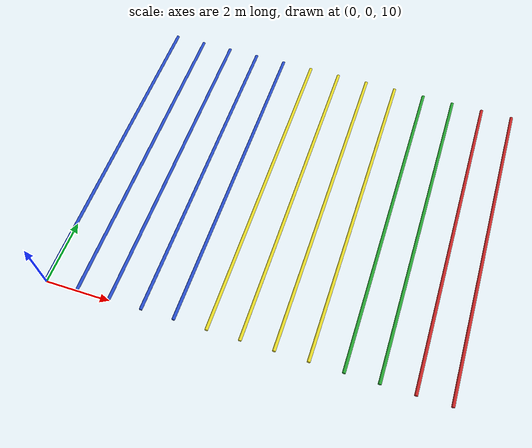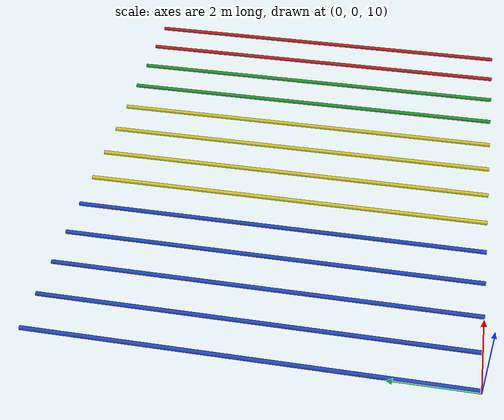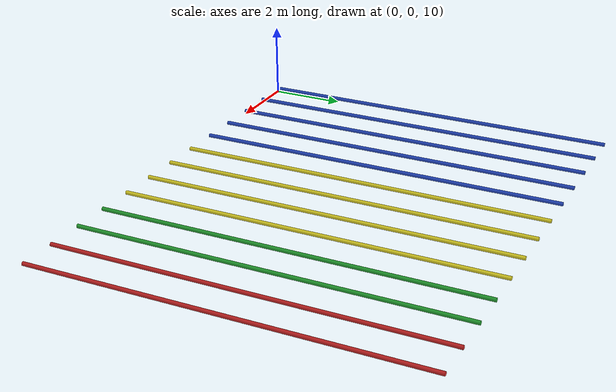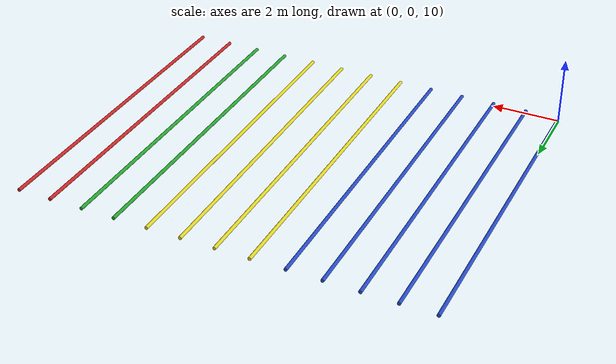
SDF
<?xml version="1.0" ?>
<sdf version="1.5">
  <world name="default">
    <gui>
      <camera name="user_camera">
        <pose>-30 0 10 0 0 0</pose>
      </camera>
    </gui>
    <scene>
      <ambient>0.5 0.5 0.5 1</ambient>
      <background>0.5 0.5 0.5 1</background>
      <shadows>false</shadows>
    </scene>
    <include>
      <uri>model://sun</uri>
    </include>
    <physics type="ode">
      <gravity>0.0 0.0 -9.81</gravity>
      <ode>
        <solver>
          <type>quick</type>
          <iters>100</iters>
          <sor>1.0</sor>
        </solver>
        <constraints>
          <cfm>0</cfm>
          <erp>1.0</erp>
          <contact_max_correcting_vel>0.0</contact_max_correcting_vel>
          <contact_surface_layer>0.0</contact_surface_layer>
        </constraints>
      </ode>
      <max_step_size>0.001</max_step_size>
    </physics>

    <!-- next few models test the effects of different masses -->
    <model name="mass_test_0p01_damping_10">
      <pose>0.0 0.0 10.1 1.57079633 0.0 0.0</pose>
      <link name="link_1">
        <pose>0.0 0.0 0.0 0.0 0.0 0.0</pose>
        <inertial>
          <pose>0.0 0.0 -10.0 0.0 0.0 0.0</pose>
          <inertia>
            <ixx>1e-5</ixx>
            <ixy>0.0</ixy>
            <ixz>0.0</ixz>
            <iyy>1e-5</iyy>
            <iyz>0.0</iyz>
            <izz>1e-5</izz>
          </inertia>
          <mass>0.01</mass>
        </inertial>
        <velocity_decay>
          <linear>0.0</linear>
          <angular>0.0</angular>
        </velocity_decay>
        <visual name="visual_cylinder">
          <pose>0.0 0.0 -5.0 0.0 0.0 0.0</pose>
          <geometry>
            <cylinder>
              <radius>0.05</radius>
              <length>10.0</length>
            </cylinder>
          </geometry>
          <material>
            <script><uri>file://media/materials/scripts/gazebo.material</uri><name>Gazebo/Blue</name></script>
          </material>
        </visual>
        <collision name="collision_cylinder">
          <pose>0.0 0.0 -5.0 0.0 0.0 0.0</pose>
          <max_contacts>250</max_contacts>
          <geometry>
            <cylinder>
              <radius>0.05</radius>
              <length>10.0</length>
            </cylinder>
          </geometry>
        </collision>
        <gravity>true</gravity>
        <self_collide>true</self_collide>
        <kinematic>false</kinematic>
      </link>
      <joint name="joint_0" type="revolute">
        <parent>world</parent>
        <child>link_1</child>
        <pose>0.0 0.0 0.0 0.0 0.0 0.0</pose>
        <axis>
          <xyz>1.0 0.0 0.0</xyz>
          <dynamics>
            <damping>10.0</damping>
            <friction>0.0</friction>
          </dynamics>
          <use_parent_model_frame>true</use_parent_model_frame>
        </axis>
      </joint>
      <static>false</static>
    </model>
    <model name="mass_test_0p1_damping_10">
      <pose>1.0 0.0 10.1 1.57079633 0.0 0.0</pose>
      <link name="link_1">
        <pose>0.0 0.0 0.0 0.0 0.0 0.0</pose>
        <inertial>
          <pose>0.0 0.0 -10.0 0.0 0.0 0.0</pose>
          <inertia>
            <ixx>1e-3</ixx>
            <ixy>0.0</ixy>
            <ixz>0.0</ixz>
            <iyy>1e-3</iyy>
            <iyz>0.0</iyz>
            <izz>1e-3</izz>
          </inertia>
          <mass>0.1</mass>
        </inertial>
        <velocity_decay>
          <linear>0.0</linear>
          <angular>0.0</angular>
        </velocity_decay>
        <visual name="visual_cylinder">
          <pose>0.0 0.0 -5.0 0.0 0.0 0.0</pose>
          <geometry>
            <cylinder>
              <radius>0.05</radius>
              <length>10.0</length>
            </cylinder>
          </geometry>
          <material>
            <script><uri>file://media/materials/scripts/gazebo.material</uri><name>Gazebo/Blue</name></script>
          </material>
        </visual>
        <collision name="collision_cylinder">
          <pose>0.0 0.0 -5.0 0.0 0.0 0.0</pose>
          <max_contacts>250</max_contacts>
          <geometry>
            <cylinder>
              <radius>0.05</radius>
              <length>10.0</length>
            </cylinder>
          </geometry>
        </collision>
        <gravity>true</gravity>
        <self_collide>true</self_collide>
        <kinematic>false</kinematic>
      </link>
      <joint name="joint_0" type="revolute">
        <parent>world</parent>
        <child>link_1</child>
        <pose>0.0 0.0 0.0 0.0 0.0 0.0</pose>
        <axis>
          <xyz>1.0 0.0 0.0</xyz>
          <dynamics>
            <damping>10.0</damping>
            <friction>0.0</friction>
          </dynamics>
          <use_parent_model_frame>true</use_parent_model_frame>
        </axis>
      </joint>
      <static>false</static>
    </model>
    <model name="mass_test_1_damping_10">
      <pose>2.0 0.0 10.1 1.57079633 0.0 0.0</pose>
      <link name="link_1">
        <pose>0.0 0.0 0.0 0.0 0.0 0.0</pose>
        <inertial>
          <pose>0.0 0.0 -10.0 0.0 0.0 0.0</pose>
          <inertia>
            <ixx>1e-3</ixx>
            <ixy>0.0</ixy>
            <ixz>0.0</ixz>
            <iyy>1e-3</iyy>
            <iyz>0.0</iyz>
            <izz>1e-3</izz>
          </inertia>
          <mass>1.0</mass>
        </inertial>
        <velocity_decay>
          <linear>0.0</linear>
          <angular>0.0</angular>
        </velocity_decay>
        <visual name="visual_cylinder">
          <pose>0.0 0.0 -5.0 0.0 0.0 0.0</pose>
          <geometry>
            <cylinder>
              <radius>0.05</radius>
              <length>10.0</length>
            </cylinder>
          </geometry>
          <material>
            <script><uri>file://media/materials/scripts/gazebo.material</uri><name>Gazebo/Blue</name></script>
          </material>
        </visual>
        <collision name="collision_cylinder">
          <pose>0.0 0.0 -5.0 0.0 0.0 0.0</pose>
          <max_contacts>250</max_contacts>
          <geometry>
            <cylinder>
              <radius>0.05</radius>
              <length>10.0</length>
            </cylinder>
          </geometry>
        </collision>
        <gravity>true</gravity>
        <self_collide>true</self_collide>
        <kinematic>false</kinematic>
      </link>
      <joint name="joint_0" type="revolute">
        <parent>world</parent>
        <child>link_1</child>
        <pose>0.0 0.0 0.0 0.0 0.0 0.0</pose>
        <axis>
          <xyz>1.0 0.0 0.0</xyz>
          <dynamics>
            <damping>10.0</damping>
            <friction>0.0</friction>
          </dynamics>
          <use_parent_model_frame>true</use_parent_model_frame>
        </axis>
      </joint>
      <static>false</static>
    </model>
    <model name="mass_test_10_damping_10">
      <pose>3.0 0.0 10.1 1.57079633 0.0 0.0</pose>
      <link name="link_1">
        <pose>0.0 0.0 0.0 0.0 0.0 0.0</pose>
        <inertial>
          <pose>0.0 0.0 -10.0 0.0 0.0 0.0</pose>
          <inertia>
            <ixx>1e-3</ixx>
            <ixy>0.0</ixy>
            <ixz>0.0</ixz>
            <iyy>1e-3</iyy>
            <iyz>0.0</iyz>
            <izz>1e-3</izz>
          </inertia>
          <mass>10.0</mass>
        </inertial>
        <velocity_decay>
          <linear>0.0</linear>
          <angular>0.0</angular>
        </velocity_decay>
        <visual name="visual_cylinder">
          <pose>0.0 0.0 -5.0 0.0 0.0 0.0</pose>
          <geometry>
            <cylinder>
              <radius>0.05</radius>
              <length>10.0</length>
            </cylinder>
          </geometry>
          <material>
            <script><uri>file://media/materials/scripts/gazebo.material</uri><name>Gazebo/Blue</name></script>
          </material>
        </visual>
        <collision name="collision_cylinder">
          <pose>0.0 0.0 -5.0 0.0 0.0 0.0</pose>
          <max_contacts>250</max_contacts>
          <geometry>
            <cylinder>
              <radius>0.05</radius>
              <length>10.0</length>
            </cylinder>
          </geometry>
        </collision>
        <gravity>true</gravity>
        <self_collide>true</self_collide>
        <kinematic>false</kinematic>
      </link>
      <joint name="joint_0" type="revolute">
        <parent>world</parent>
        <child>link_1</child>
        <pose>0.0 0.0 0.0 0.0 0.0 0.0</pose>
        <axis>
          <xyz>1.0 0.0 0.0</xyz>
          <dynamics>
            <damping>10.0</damping>
            <friction>0.0</friction>
          </dynamics>
          <use_parent_model_frame>true</use_parent_model_frame>
        </axis>
      </joint>
      <static>false</static>
    </model>
    <model name="mass_test_100_damping_10">
      <pose>4.0 0.0 10.1 1.57079633 0.0 0.0</pose>
      <link name="link_1">
        <pose>0.0 0.0 0.0 0.0 0.0 0.0</pose>
        <inertial>
          <pose>0.0 0.0 -10.0 0.0 0.0 0.0</pose>
          <inertia>
            <ixx>1e-3</ixx>
            <ixy>0.0</ixy>
            <ixz>0.0</ixz>
            <iyy>1e-3</iyy>
            <iyz>0.0</iyz>
            <izz>1e-3</izz>
          </inertia>
          <mass>100.0</mass>
        </inertial>
        <velocity_decay>
          <linear>0.0</linear>
          <angular>0.0</angular>
        </velocity_decay>
        <visual name="visual_cylinder">
          <pose>0.0 0.0 -5.0 0.0 0.0 0.0</pose>
          <geometry>
            <cylinder>
              <radius>0.05</radius>
              <length>10.0</length>
            </cylinder>
          </geometry>
          <material>
            <script><uri>file://media/materials/scripts/gazebo.material</uri><name>Gazebo/Blue</name></script>
          </material>
        </visual>
        <collision name="collision_cylinder">
          <pose>0.0 0.0 -5.0 0.0 0.0 0.0</pose>
          <max_contacts>250</max_contacts>
          <geometry>
            <cylinder>
              <radius>0.05</radius>
              <length>10.0</length>
            </cylinder>
          </geometry>
        </collision>
        <gravity>true</gravity>
        <self_collide>true</self_collide>
        <kinematic>false</kinematic>
      </link>
      <joint name="joint_0" type="revolute">
        <parent>world</parent>
        <child>link_1</child>
        <pose>0.0 0.0 0.0 0.0 0.0 0.0</pose>
        <axis>
          <xyz>1.0 0.0 0.0</xyz>
          <dynamics>
            <damping>10.0</damping>
            <friction>0.0</friction>
          </dynamics>
          <use_parent_model_frame>true</use_parent_model_frame>
        </axis>
      </joint>
      <static>false</static>
    </model>

    <!-- next few models test different damping coefficients -->
    <model name="damping_test_mass_1_damping_1">
      <pose>5.0 0.0 10.1 1.57079633 0.0 0.0</pose>
      <link name="link_1">
        <pose>0.0 0.0 0.0 0.0 0.0 0.0</pose>
        <inertial>
          <pose>0.0 0.0 -10.0 0.0 0.0 0.0</pose>
          <inertia>
            <ixx>1e-3</ixx>
            <ixy>0.0</ixy>
            <ixz>0.0</ixz>
            <iyy>1e-3</iyy>
            <iyz>0.0</iyz>
            <izz>1e-3</izz>
          </inertia>
          <mass>1.0</mass>
        </inertial>
        <velocity_decay>
          <linear>0.0</linear>
          <angular>0.0</angular>
        </velocity_decay>
        <visual name="visual_cylinder">
          <pose>0.0 0.0 -5.0 0.0 0.0 0.0</pose>
          <geometry>
            <cylinder>
              <radius>0.05</radius>
              <length>10.0</length>
            </cylinder>
          </geometry>
          <material>
            <script><uri>file://media/materials/scripts/gazebo.material</uri><name>Gazebo/Yellow</name></script>
          </material>
        </visual>
        <collision name="collision_cylinder">
          <pose>0.0 0.0 -5.0 0.0 0.0 0.0</pose>
          <max_contacts>250</max_contacts>
          <geometry>
            <cylinder>
              <radius>0.05</radius>
              <length>10.0</length>
            </cylinder>
          </geometry>
        </collision>
        <gravity>true</gravity>
        <self_collide>true</self_collide>
        <kinematic>false</kinematic>
      </link>
      <joint name="joint_0" type="revolute">
        <parent>world</parent>
        <child>link_1</child>
        <pose>0.0 0.0 0.0 0.0 0.0 0.0</pose>
        <axis>
          <xyz>1.0 0.0 0.0</xyz>
          <dynamics>
            <damping>1.0</damping>
            <friction>0.0</friction>
          </dynamics>
          <use_parent_model_frame>true</use_parent_model_frame>
        </axis>
      </joint>
      <static>false</static>
    </model>
    <model name="damping_test_mass_1_damping_10">
      <pose>6.0 0.0 10.1 1.57079633 0.0 0.0</pose>
      <link name="link_1">
        <pose>0.0 0.0 0.0 0.0 0.0 0.0</pose>
        <inertial>
          <pose>0.0 0.0 -10.0 0.0 0.0 0.0</pose>
          <inertia>
            <ixx>1e-3</ixx>
            <ixy>0.0</ixy>
            <ixz>0.0</ixz>
            <iyy>1e-3</iyy>
            <iyz>0.0</iyz>
            <izz>1e-3</izz>
          </inertia>
          <mass>1.0</mass>
        </inertial>
        <velocity_decay>
          <linear>0.0</linear>
          <angular>0.0</angular>
        </velocity_decay>
        <visual name="visual_cylinder">
          <pose>0.0 0.0 -5.0 0.0 0.0 0.0</pose>
          <geometry>
            <cylinder>
              <radius>0.05</radius>
              <length>10.0</length>
            </cylinder>
          </geometry>
          <material>
            <script><uri>file://media/materials/scripts/gazebo.material</uri><name>Gazebo/Yellow</name></script>
          </material>
        </visual>
        <collision name="collision_cylinder">
          <pose>0.0 0.0 -5.0 0.0 0.0 0.0</pose>
          <max_contacts>250</max_contacts>
          <geometry>
            <cylinder>
              <radius>0.05</radius>
              <length>10.0</length>
            </cylinder>
          </geometry>
        </collision>
        <gravity>true</gravity>
        <self_collide>true</self_collide>
        <kinematic>false</kinematic>
      </link>
      <joint name="joint_0" type="revolute">
        <parent>world</parent>
        <child>link_1</child>
        <pose>0.0 0.0 0.0 0.0 0.0 0.0</pose>
        <axis>
          <xyz>1.0 0.0 0.0</xyz>
          <dynamics>
            <damping>10.0</damping>
            <friction>0.0</friction>
          </dynamics>
          <use_parent_model_frame>true</use_parent_model_frame>
        </axis>
      </joint>
      <static>false</static>
    </model>
    <model name="damping_test_mass_1_damping_100">
      <pose>7.0 0.0 10.1 1.57079633 0.0 0.0</pose>
      <link name="link_1">
        <pose>0.0 0.0 0.0 0.0 0.0 0.0</pose>
        <inertial>
          <pose>0.0 0.0 -10.0 0.0 0.0 0.0</pose>
          <inertia>
            <ixx>1e-3</ixx>
            <ixy>0.0</ixy>
            <ixz>0.0</ixz>
            <iyy>1e-3</iyy>
            <iyz>0.0</iyz>
            <izz>1e-3</izz>
          </inertia>
          <mass>1.0</mass>
        </inertial>
        <velocity_decay>
          <linear>0.0</linear>
          <angular>0.0</angular>
        </velocity_decay>
        <visual name="visual_cylinder">
          <pose>0.0 0.0 -5.0 0.0 0.0 0.0</pose>
          <geometry>
            <cylinder>
              <radius>0.05</radius>
              <length>10.0</length>
            </cylinder>
          </geometry>
          <material>
            <script><uri>file://media/materials/scripts/gazebo.material</uri><name>Gazebo/Yellow</name></script>
          </material>
        </visual>
        <collision name="collision_cylinder">
          <pose>0.0 0.0 -5.0 0.0 0.0 0.0</pose>
          <max_contacts>250</max_contacts>
          <geometry>
            <cylinder>
              <radius>0.05</radius>
              <length>10.0</length>
            </cylinder>
          </geometry>
        </collision>
        <gravity>true</gravity>
        <self_collide>true</self_collide>
        <kinematic>false</kinematic>
      </link>
      <joint name="joint_0" type="revolute">
        <parent>world</parent>
        <child>link_1</child>
        <pose>0.0 0.0 0.0 0.0 0.0 0.0</pose>
        <axis>
          <xyz>1.0 0.0 0.0</xyz>
          <dynamics>
            <damping>100.0</damping>
            <friction>0.0</friction>
          </dynamics>
          <use_parent_model_frame>true</use_parent_model_frame>
        </axis>
      </joint>
      <static>false</static>
    </model>
    <model name="damping_test_mass_1_damping_1000">
      <pose>8.0 0.0 10.1 1.57079633 0.0 0.0</pose>
      <link name="link_1">
        <pose>0.0 0.0 0.0 0.0 0.0 0.0</pose>
        <inertial>
          <pose>0.0 0.0 -10.0 0.0 0.0 0.0</pose>
          <inertia>
            <ixx>1e-3</ixx>
            <ixy>0.0</ixy>
            <ixz>0.0</ixz>
            <iyy>1e-3</iyy>
            <iyz>0.0</iyz>
            <izz>1e-3</izz>
          </inertia>
          <mass>1.0</mass>
        </inertial>
        <velocity_decay>
          <linear>0.0</linear>
          <angular>0.0</angular>
        </velocity_decay>
        <visual name="visual_cylinder">
          <pose>0.0 0.0 -5.0 0.0 0.0 0.0</pose>
          <geometry>
            <cylinder>
              <radius>0.05</radius>
              <length>10.0</length>
            </cylinder>
          </geometry>
          <material>
            <script><uri>file://media/materials/scripts/gazebo.material</uri><name>Gazebo/Yellow</name></script>
          </material>
        </visual>
        <collision name="collision_cylinder">
          <pose>0.0 0.0 -5.0 0.0 0.0 0.0</pose>
          <max_contacts>250</max_contacts>
          <geometry>
            <cylinder>
              <radius>0.05</radius>
              <length>10.0</length>
            </cylinder>
          </geometry>
        </collision>
        <gravity>true</gravity>
        <self_collide>true</self_collide>
        <kinematic>false</kinematic>
      </link>
      <joint name="joint_0" type="revolute">
        <parent>world</parent>
        <child>link_1</child>
        <pose>0.0 0.0 0.0 0.0 0.0 0.0</pose>
        <axis>
          <xyz>1.0 0.0 0.0</xyz>
          <dynamics>
            <damping>1000.0</damping>
            <friction>0.0</friction>
          </dynamics>
          <use_parent_model_frame>true</use_parent_model_frame>
        </axis>
      </joint>
      <static>false</static>
    </model>

    <!-- next two models have large MOI, different damping -->
    <model name="moi_test_mass_1_moi_1_damping_1">
      <pose>9.0 0.0 10.1 1.57079633 0.0 0.0</pose>
      <link name="link_1">
        <pose>0.0 0.0 0.0 0.0 0.0 0.0</pose>
        <inertial>
          <pose>0.0 0.0 -10.0 0.0 0.0 0.0</pose>
          <inertia>
            <ixx>1.0</ixx>
            <ixy>0.0</ixy>
            <ixz>0.0</ixz>
            <iyy>1.0</iyy>
            <iyz>0.0</iyz>
            <izz>1.0</izz>
          </inertia>
          <mass>1.0</mass>
        </inertial>
        <velocity_decay>
          <linear>0.0</linear>
          <angular>0.0</angular>
        </velocity_decay>
        <visual name="visual_cylinder">
          <pose>0.0 0.0 -5.0 0.0 0.0 0.0</pose>
          <geometry>
            <cylinder>
              <radius>0.05</radius>
              <length>10.0</length>
            </cylinder>
          </geometry>
          <material>
            <script><uri>file://media/materials/scripts/gazebo.material</uri><name>Gazebo/Green</name></script>
          </material>
        </visual>
        <collision name="collision_cylinder">
          <pose>0.0 0.0 -5.0 0.0 0.0 0.0</pose>
          <max_contacts>250</max_contacts>
          <geometry>
            <cylinder>
              <radius>0.05</radius>
              <length>10.0</length>
            </cylinder>
          </geometry>
        </collision>
        <gravity>true</gravity>
        <self_collide>true</self_collide>
        <kinematic>false</kinematic>
      </link>
      <joint name="joint_0" type="revolute">
        <parent>world</parent>
        <child>link_1</child>
        <pose>0.0 0.0 0.0 0.0 0.0 0.0</pose>
        <axis>
          <xyz>1.0 0.0 0.0</xyz>
          <dynamics>
            <damping>1.0</damping>
            <friction>0.0</friction>
          </dynamics>
          <use_parent_model_frame>true</use_parent_model_frame>
        </axis>
      </joint>
      <static>false</static>
    </model>
    <model name="moi_test_mass_1_moi_1_damping_10">
      <pose>10.0 0.0 10.1 1.57079633 0.0 0.0</pose>
      <link name="link_1">
        <pose>0.0 0.0 0.0 0.0 0.0 0.0</pose>
        <inertial>
          <pose>0.0 0.0 -10.0 0.0 0.0 0.0</pose>
          <inertia>
            <ixx>1.0</ixx>
            <ixy>0.0</ixy>
            <ixz>0.0</ixz>
            <iyy>1.0</iyy>
            <iyz>0.0</iyz>
            <izz>1.0</izz>
          </inertia>
          <mass>1.0</mass>
        </inertial>
        <velocity_decay>
          <linear>0.0</linear>
          <angular>0.0</angular>
        </velocity_decay>
        <visual name="visual_cylinder">
          <pose>0.0 0.0 -5.0 0.0 0.0 0.0</pose>
          <geometry>
            <cylinder>
              <radius>0.05</radius>
              <length>10.0</length>
            </cylinder>
          </geometry>
          <material>
            <script><uri>file://media/materials/scripts/gazebo.material</uri><name>Gazebo/Green</name></script>
          </material>
        </visual>
        <collision name="collision_cylinder">
          <pose>0.0 0.0 -5.0 0.0 0.0 0.0</pose>
          <max_contacts>250</max_contacts>
          <geometry>
            <cylinder>
              <radius>0.05</radius>
              <length>10.0</length>
            </cylinder>
          </geometry>
        </collision>
        <gravity>true</gravity>
        <self_collide>true</self_collide>
        <kinematic>false</kinematic>
      </link>
      <joint name="joint_0" type="revolute">
        <parent>world</parent>
        <child>link_1</child>
        <pose>0.0 0.0 0.0 0.0 0.0 0.0</pose>
        <axis>
          <xyz>1.0 0.0 0.0</xyz>
          <dynamics>
            <damping>10.0</damping>
            <friction>0.0</friction>
          </dynamics>
          <use_parent_model_frame>true</use_parent_model_frame>
        </axis>
      </joint>
      <static>false</static>
    </model>

    <!-- next two models have different point masses, but should oscillate
         synchronously if physics solver is doing the right thing -->
    <model name="freq_test_mass_1_damping_0">
      <pose>11.0 0.0 10.1 1.57079633 0.0 0.0</pose>
      <link name="link_1">
        <pose>0.0 0.0 0.0 0.0 0.0 0.0</pose>
        <inertial>
          <pose>0.0 0.0 -10.0 0.0 0.0 0.0</pose>
          <inertia>
            <ixx>1e-3</ixx>
            <ixy>0.0</ixy>
            <ixz>0.0</ixz>
            <iyy>1e-3</iyy>
            <iyz>0.0</iyz>
            <izz>1e-3</izz>
          </inertia>
          <mass>1.0</mass>
        </inertial>
        <velocity_decay>
          <linear>0.0</linear>
          <angular>0.0</angular>
        </velocity_decay>
        <visual name="visual_cylinder">
          <pose>0.0 0.0 -5.0 0.0 0.0 0.0</pose>
          <geometry>
            <cylinder>
              <radius>0.05</radius>
              <length>10.0</length>
            </cylinder>
          </geometry>
          <material>
            <script><uri>file://media/materials/scripts/gazebo.material</uri><name>Gazebo/Red</name></script>
          </material>
        </visual>
        <collision name="collision_cylinder">
          <pose>0.0 0.0 -5.0 0.0 0.0 0.0</pose>
          <max_contacts>250</max_contacts>
          <geometry>
            <cylinder>
              <radius>0.05</radius>
              <length>10.0</length>
            </cylinder>
          </geometry>
        </collision>
        <gravity>true</gravity>
        <self_collide>true</self_collide>
        <kinematic>false</kinematic>
      </link>
      <joint name="joint_0" type="revolute">
        <parent>world</parent>
        <child>link_1</child>
        <pose>0.0 0.0 0.0 0.0 0.0 0.0</pose>
        <axis>
          <xyz>1.0 0.0 0.0</xyz>
          <dynamics>
            <damping>0.0</damping>
            <friction>0.0</friction>
          </dynamics>
          <use_parent_model_frame>true</use_parent_model_frame>
        </axis>
      </joint>
      <static>false</static>
    </model>
    <model name="freq_test_mass_10_damping_0">
      <pose>12.0 0.0 10.1 1.57079633 0.0 0.0</pose>
      <link name="link_1">
        <pose>0.0 0.0 0.0 0.0 0.0 0.0</pose>
        <inertial>
          <pose>0.0 0.0 -10.0 0.0 0.0 0.0</pose>
          <inertia>
            <ixx>1e-3</ixx>
            <ixy>0.0</ixy>
            <ixz>0.0</ixz>
            <iyy>1e-3</iyy>
            <iyz>0.0</iyz>
            <izz>1e-3</izz>
          </inertia>
          <mass>10.0</mass>
        </inertial>
        <velocity_decay>
          <linear>0.0</linear>
          <angular>0.0</angular>
        </velocity_decay>
        <visual name="visual_cylinder">
          <pose>0.0 0.0 -5.0 0.0 0.0 0.0</pose>
          <geometry>
            <cylinder>
              <radius>0.05</radius>
              <length>10.0</length>
            </cylinder>
          </geometry>
          <material>
            <script><uri>file://media/materials/scripts/gazebo.material</uri><name>Gazebo/Red</name></script>
          </material>
        </visual>
        <collision name="collision_cylinder">
          <pose>0.0 0.0 -5.0 0.0 0.0 0.0</pose>
          <max_contacts>250</max_contacts>
          <geometry>
            <cylinder>
              <radius>0.05</radius>
              <length>10.0</length>
            </cylinder>
          </geometry>
        </collision>
        <gravity>true</gravity>
        <self_collide>true</self_collide>
        <kinematic>false</kinematic>
      </link>
      <joint name="joint_0" type="revolute">
        <parent>world</parent>
        <child>link_1</child>
        <pose>0.0 0.0 0.0 0.0 0.0 0.0</pose>
        <axis>
          <xyz>1.0 0.0 0.0</xyz>
          <dynamics>
            <damping>0.0</damping>
            <friction>0.0</friction>
          </dynamics>
          <use_parent_model_frame>true</use_parent_model_frame>
        </axis>
      </joint>
      <static>false</static>
    </model>
  </world>
</sdf>
